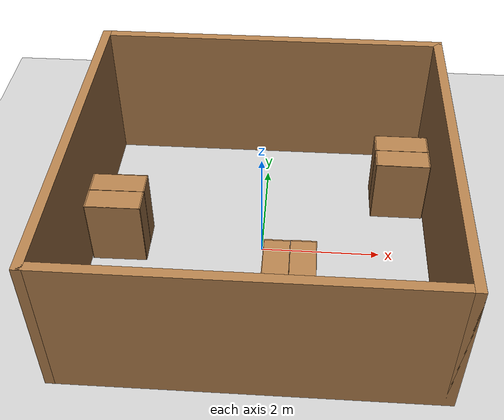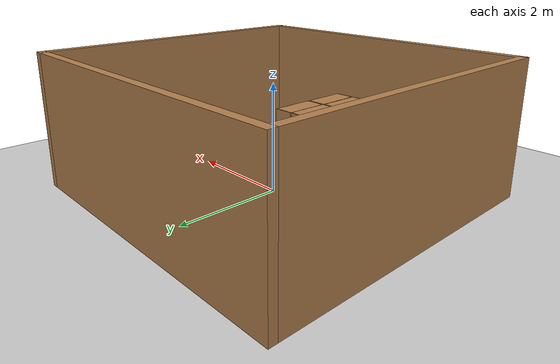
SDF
<sdf version="1.7">
 <world name="default">
  <light name="sun" type="directional">
   <pose>0 0 10 0 -0 0</pose>
   <diffuse>0.8 0.8 0.8 1</diffuse>
   <specular>0.2 0.2 0.2 1</specular>
   <attenuation>
    <range>1000</range>
    <constant>0.9</constant>
    <linear>0.01</linear>
    <quadratic>0.001</quadratic>
   </attenuation>
   <direction>-0.5 0.1 -0.9</direction>
   <spot><inner_angle>0</inner_angle><outer_angle>0</outer_angle><falloff>0</falloff></spot>
  </light>
  <model name="ground_plane">
   <static>1</static>
   <link name="link">
    <collision name="collision">
     <geometry><plane><normal>0 0 1</normal><size>100 100</size></plane></geometry>
     <surface>
      <contact><collide_bitmask>65535</collide_bitmask></contact>
      <friction><ode><mu>100</mu><mu2>50</mu2></ode></friction>
     </surface>
    </collision>
    <visual name="visual">
     <cast_shadows>0</cast_shadows>
     <geometry><plane><normal>0 0 1</normal><size>100 100</size></plane></geometry>
     <material>
      <script><uri>file://media/materials/scripts/gazebo.material</uri><name>Gazebo/Grey</name></script>
     </material>
    </visual>
   </link>
  </model>
  <gravity>0 0 -9.8</gravity>
  <magnetic_field>6e-06 2.3e-05 -4.2e-05</magnetic_field>
  <atmosphere type="adiabatic"/>
  <physics type="ode">
   <max_step_size>0.001</max_step_size>
   <real_time_factor>10</real_time_factor>
   <real_time_update_rate>10000</real_time_update_rate>
  </physics>
  <scene><ambient>0.4 0.4 0.4 1</ambient><background>0.7 0.7 0.7 1</background><shadows>1</shadows></scene>
  <audio><device>default</device></audio>
  <spherical_coordinates>
   <surface_model>EARTH_WGS84</surface_model>
   <latitude_deg>0</latitude_deg>
   <longitude_deg>0</longitude_deg>
   <elevation>0</elevation>
   <heading_deg>0</heading_deg>
  </spherical_coordinates>
  <model name="Untitled">
   <pose>-0.026247 -0.03989 0 0 -0 0</pose>
   <link name="Wall_0">
    <collision name="Wall_0_Collision">
     <geometry><box><size>6 0.15 2.5</size></box></geometry>
     <pose>0 0 1.25 0 -0 0</pose>
    </collision>
    <visual name="Wall_0_Visual">
     <pose>0 0 1.25 0 -0 0</pose>
     <geometry><box><size>6 0.15 2.5</size></box></geometry>
     <material>
      <script><uri>file://media/materials/scripts/gazebo.material</uri><name>Gazebo/Wood</name></script>
      <ambient>1 1 1 1</ambient>
     </material>
     <meta><layer>0</layer></meta>
    </visual>
    <pose>0 -2.8 0 0 -0 0</pose>
   </link>
   <link name="Wall_1">
    <collision name="Wall_1_Collision">
     <geometry><box><size>5.75 0.15 2.5</size></box></geometry>
     <pose>0 0 1.25 0 -0 0</pose>
    </collision>
    <visual name="Wall_1_Visual">
     <pose>0 0 1.25 0 -0 0</pose>
     <geometry><box><size>5.75 0.15 2.5</size></box></geometry>
     <material>
      <script><uri>file://media/materials/scripts/gazebo.material</uri><name>Gazebo/Wood</name></script>
      <ambient>1 1 1 1</ambient>
     </material>
     <meta><layer>0</layer></meta>
    </visual>
    <pose>2.925 -0 0 0 -0 1.5708</pose>
   </link>
   <link name="Wall_2">
    <collision name="Wall_2_Collision">
     <geometry><box><size>6 0.15 2.5</size></box></geometry>
     <pose>0 0 1.25 0 -0 0</pose>
    </collision>
    <visual name="Wall_2_Visual">
     <pose>0 0 1.25 0 -0 0</pose>
     <geometry><box><size>6 0.15 2.5</size></box></geometry>
     <material>
      <script><uri>file://media/materials/scripts/gazebo.material</uri><name>Gazebo/Wood</name></script>
      <ambient>1 1 1 1</ambient>
     </material>
     <meta><layer>0</layer></meta>
    </visual>
    <pose>0 2.8 0 0 -0 3.14159</pose>
   </link>
   <link name="Wall_3">
    <collision name="Wall_3_Collision">
     <geometry><box><size>5.75 0.15 2.5</size></box></geometry>
     <pose>0 0 1.25 0 -0 0</pose>
    </collision>
    <visual name="Wall_3_Visual">
     <pose>0 0 1.25 0 -0 0</pose>
     <geometry><box><size>5.75 0.15 2.5</size></box></geometry>
     <material>
      <script><uri>file://media/materials/scripts/gazebo.material</uri><name>Gazebo/Wood</name></script>
      <ambient>1 1 1 1</ambient>
     </material>
     <meta><layer>0</layer></meta>
    </visual>
    <pose>-2.925 -0 0 0 -0 -1.5708</pose>
   </link>
   <static>1</static>
  </model>
  <model name="bookshelf">
   <static>1</static>
   <link name="link">
    <inertial><mass>1</mass></inertial>
    <collision name="back">
     <pose>0 0.005 0.6 0 -0 0</pose>
     <geometry><box><size>0.9 0.01 1.2</size></box></geometry>
    </collision>
    <visual name="visual1">
     <pose>0 0.005 0.6 0 -0 0</pose>
     <geometry><box><size>0.9 0.01 1.2</size></box></geometry>
     <material>
      <script><uri>file://media/materials/scripts/gazebo.material</uri><name>Gazebo/Wood</name></script>
     </material>
    </visual>
    <collision name="left_side">
     <pose>0.45 -0.195 0.6 0 -0 0</pose>
     <geometry><box><size>0.02 0.4 1.2</size></box></geometry>
    </collision>
    <visual name="visual2">
     <pose>0.45 -0.195 0.6 0 -0 0</pose>
     <geometry><box><size>0.02 0.4 1.2</size></box></geometry>
     <material>
      <script><uri>file://media/materials/scripts/gazebo.material</uri><name>Gazebo/Wood</name></script>
     </material>
    </visual>
    <collision name="right_side">
     <pose>-0.45 -0.195 0.6 0 -0 0</pose>
     <geometry><box><size>0.02 0.4 1.2</size></box></geometry>
    </collision>
    <visual name="visual3">
     <pose>-0.45 -0.195 0.6 0 -0 0</pose>
     <geometry><box><size>0.02 0.4 1.2</size></box></geometry>
     <material>
      <script><uri>file://media/materials/scripts/gazebo.material</uri><name>Gazebo/Wood</name></script>
     </material>
    </visual>
    <collision name="bottom">
     <pose>0 -0.195 0.03 0 -0 0</pose>
     <geometry><box><size>0.88 0.4 0.06</size></box></geometry>
    </collision>
    <visual name="visual4">
     <pose>0 -0.195 0.03 0 -0 0</pose>
     <geometry><box><size>0.88 0.4 0.06</size></box></geometry>
     <material>
      <script><uri>file://media/materials/scripts/gazebo.material</uri><name>Gazebo/Wood</name></script>
     </material>
    </visual>
    <collision name="top">
     <pose>0 -0.195 1.19 0 -0 0</pose>
     <geometry><box><size>0.88 0.4 0.02</size></box></geometry>
    </collision>
    <visual name="visual5">
     <pose>0 -0.195 1.19 0 -0 0</pose>
     <geometry><box><size>0.88 0.4 0.02</size></box></geometry>
     <material>
      <script><uri>file://media/materials/scripts/gazebo.material</uri><name>Gazebo/Wood</name></script>
     </material>
    </visual>
    <collision name="low_shelf">
     <pose>0 -0.195 0.43 0 -0 0</pose>
     <geometry><box><size>0.88 0.4 0.02</size></box></geometry>
    </collision>
    <visual name="visual6">
     <pose>0 -0.195 0.43 0 -0 0</pose>
     <geometry><box><size>0.88 0.4 0.02</size></box></geometry>
     <material>
      <script><uri>file://media/materials/scripts/gazebo.material</uri><name>Gazebo/Wood</name></script>
     </material>
    </visual>
    <collision name="high_shelf">
     <pose>0 -0.195 0.8 0 -0 0</pose>
     <geometry><box><size>0.88 0.4 0.02</size></box></geometry>
    </collision>
    <visual name="visual7">
     <pose>0 -0.195 0.8 0 -0 0</pose>
     <geometry><box><size>0.88 0.4 0.02</size></box></geometry>
     <material>
      <script><uri>file://media/materials/scripts/gazebo.material</uri><name>Gazebo/Wood</name></script>
     </material>
    </visual>
   </link>
   <pose>-2.40378 0.433356 0 0 -0 0.007442</pose>
  </model>
  <model name="bookshelf_0">
   <static>1</static>
   <link name="link">
    <inertial><mass>1</mass></inertial>
    <collision name="back">
     <pose>0 0.005 0.6 0 -0 0</pose>
     <geometry><box><size>0.9 0.01 1.2</size></box></geometry>
    </collision>
    <visual name="visual1">
     <pose>0 0.005 0.6 0 -0 0</pose>
     <geometry><box><size>0.9 0.01 1.2</size></box></geometry>
     <material>
      <script><uri>file://media/materials/scripts/gazebo.material</uri><name>Gazebo/Wood</name></script>
     </material>
    </visual>
    <collision name="left_side">
     <pose>0.45 -0.195 0.6 0 -0 0</pose>
     <geometry><box><size>0.02 0.4 1.2</size></box></geometry>
    </collision>
    <visual name="visual2">
     <pose>0.45 -0.195 0.6 0 -0 0</pose>
     <geometry><box><size>0.02 0.4 1.2</size></box></geometry>
     <material>
      <script><uri>file://media/materials/scripts/gazebo.material</uri><name>Gazebo/Wood</name></script>
     </material>
    </visual>
    <collision name="right_side">
     <pose>-0.45 -0.195 0.6 0 -0 0</pose>
     <geometry><box><size>0.02 0.4 1.2</size></box></geometry>
    </collision>
    <visual name="visual3">
     <pose>-0.45 -0.195 0.6 0 -0 0</pose>
     <geometry><box><size>0.02 0.4 1.2</size></box></geometry>
     <material>
      <script><uri>file://media/materials/scripts/gazebo.material</uri><name>Gazebo/Wood</name></script>
     </material>
    </visual>
    <collision name="bottom">
     <pose>0 -0.195 0.03 0 -0 0</pose>
     <geometry><box><size>0.88 0.4 0.06</size></box></geometry>
    </collision>
    <visual name="visual4">
     <pose>0 -0.195 0.03 0 -0 0</pose>
     <geometry><box><size>0.88 0.4 0.06</size></box></geometry>
     <material>
      <script><uri>file://media/materials/scripts/gazebo.material</uri><name>Gazebo/Wood</name></script>
     </material>
    </visual>
    <collision name="top">
     <pose>0 -0.195 1.19 0 -0 0</pose>
     <geometry><box><size>0.88 0.4 0.02</size></box></geometry>
    </collision>
    <visual name="visual5">
     <pose>0 -0.195 1.19 0 -0 0</pose>
     <geometry><box><size>0.88 0.4 0.02</size></box></geometry>
     <material>
      <script><uri>file://media/materials/scripts/gazebo.material</uri><name>Gazebo/Wood</name></script>
     </material>
    </visual>
    <collision name="low_shelf">
     <pose>0 -0.195 0.43 0 -0 0</pose>
     <geometry><box><size>0.88 0.4 0.02</size></box></geometry>
    </collision>
    <visual name="visual6">
     <pose>0 -0.195 0.43 0 -0 0</pose>
     <geometry><box><size>0.88 0.4 0.02</size></box></geometry>
     <material>
      <script><uri>file://media/materials/scripts/gazebo.material</uri><name>Gazebo/Wood</name></script>
     </material>
    </visual>
    <collision name="high_shelf">
     <pose>0 -0.195 0.8 0 -0 0</pose>
     <geometry><box><size>0.88 0.4 0.02</size></box></geometry>
    </collision>
    <visual name="visual7">
     <pose>0 -0.195 0.8 0 -0 0</pose>
     <geometry><box><size>0.88 0.4 0.02</size></box></geometry>
     <material>
      <script><uri>file://media/materials/scripts/gazebo.material</uri><name>Gazebo/Wood</name></script>
     </material>
    </visual>
   </link>
   <pose>-2.39866 -0.364376 0 0 -0 -3.1312</pose>
  </model>
  <model name="bookshelf_1">
   <static>1</static>
   <link name="link">
    <inertial><mass>1</mass></inertial>
    <collision name="back">
     <pose>0 0.005 0.6 0 -0 0</pose>
     <geometry><box><size>0.9 0.01 1.2</size></box></geometry>
    </collision>
    <visual name="visual1">
     <pose>0 0.005 0.6 0 -0 0</pose>
     <geometry><box><size>0.9 0.01 1.2</size></box></geometry>
     <material>
      <script><uri>file://media/materials/scripts/gazebo.material</uri><name>Gazebo/Wood</name></script>
     </material>
    </visual>
    <collision name="left_side">
     <pose>0.45 -0.195 0.6 0 -0 0</pose>
     <geometry><box><size>0.02 0.4 1.2</size></box></geometry>
    </collision>
    <visual name="visual2">
     <pose>0.45 -0.195 0.6 0 -0 0</pose>
     <geometry><box><size>0.02 0.4 1.2</size></box></geometry>
     <material>
      <script><uri>file://media/materials/scripts/gazebo.material</uri><name>Gazebo/Wood</name></script>
     </material>
    </visual>
    <collision name="right_side">
     <pose>-0.45 -0.195 0.6 0 -0 0</pose>
     <geometry><box><size>0.02 0.4 1.2</size></box></geometry>
    </collision>
    <visual name="visual3">
     <pose>-0.45 -0.195 0.6 0 -0 0</pose>
     <geometry><box><size>0.02 0.4 1.2</size></box></geometry>
     <material>
      <script><uri>file://media/materials/scripts/gazebo.material</uri><name>Gazebo/Wood</name></script>
     </material>
    </visual>
    <collision name="bottom">
     <pose>0 -0.195 0.03 0 -0 0</pose>
     <geometry><box><size>0.88 0.4 0.06</size></box></geometry>
    </collision>
    <visual name="visual4">
     <pose>0 -0.195 0.03 0 -0 0</pose>
     <geometry><box><size>0.88 0.4 0.06</size></box></geometry>
     <material>
      <script><uri>file://media/materials/scripts/gazebo.material</uri><name>Gazebo/Wood</name></script>
     </material>
    </visual>
    <collision name="top">
     <pose>0 -0.195 1.19 0 -0 0</pose>
     <geometry><box><size>0.88 0.4 0.02</size></box></geometry>
    </collision>
    <visual name="visual5">
     <pose>0 -0.195 1.19 0 -0 0</pose>
     <geometry><box><size>0.88 0.4 0.02</size></box></geometry>
     <material>
      <script><uri>file://media/materials/scripts/gazebo.material</uri><name>Gazebo/Wood</name></script>
     </material>
    </visual>
    <collision name="low_shelf">
     <pose>0 -0.195 0.43 0 -0 0</pose>
     <geometry><box><size>0.88 0.4 0.02</size></box></geometry>
    </collision>
    <visual name="visual6">
     <pose>0 -0.195 0.43 0 -0 0</pose>
     <geometry><box><size>0.88 0.4 0.02</size></box></geometry>
     <material>
      <script><uri>file://media/materials/scripts/gazebo.material</uri><name>Gazebo/Wood</name></script>
     </material>
    </visual>
    <collision name="high_shelf">
     <pose>0 -0.195 0.8 0 -0 0</pose>
     <geometry><box><size>0.88 0.4 0.02</size></box></geometry>
    </collision>
    <visual name="visual7">
     <pose>0 -0.195 0.8 0 -0 0</pose>
     <geometry><box><size>0.88 0.4 0.02</size></box></geometry>
     <material>
      <script><uri>file://media/materials/scripts/gazebo.material</uri><name>Gazebo/Wood</name></script>
     </material>
    </visual>
   </link>
   <pose>2.34894 1.75735 0 0 -0 0</pose>
  </model>
  <model name="bookshelf_2">
   <static>1</static>
   <link name="link">
    <inertial><mass>1</mass></inertial>
    <collision name="back">
     <pose>0 0.005 0.6 0 -0 0</pose>
     <geometry><box><size>0.9 0.01 1.2</size></box></geometry>
    </collision>
    <visual name="visual1">
     <pose>0 0.005 0.6 0 -0 0</pose>
     <geometry><box><size>0.9 0.01 1.2</size></box></geometry>
     <material>
      <script><uri>file://media/materials/scripts/gazebo.material</uri><name>Gazebo/Wood</name></script>
     </material>
    </visual>
    <collision name="left_side">
     <pose>0.45 -0.195 0.6 0 -0 0</pose>
     <geometry><box><size>0.02 0.4 1.2</size></box></geometry>
    </collision>
    <visual name="visual2">
     <pose>0.45 -0.195 0.6 0 -0 0</pose>
     <geometry><box><size>0.02 0.4 1.2</size></box></geometry>
     <material>
      <script><uri>file://media/materials/scripts/gazebo.material</uri><name>Gazebo/Wood</name></script>
     </material>
    </visual>
    <collision name="right_side">
     <pose>-0.45 -0.195 0.6 0 -0 0</pose>
     <geometry><box><size>0.02 0.4 1.2</size></box></geometry>
    </collision>
    <visual name="visual3">
     <pose>-0.45 -0.195 0.6 0 -0 0</pose>
     <geometry><box><size>0.02 0.4 1.2</size></box></geometry>
     <material>
      <script><uri>file://media/materials/scripts/gazebo.material</uri><name>Gazebo/Wood</name></script>
     </material>
    </visual>
    <collision name="bottom">
     <pose>0 -0.195 0.03 0 -0 0</pose>
     <geometry><box><size>0.88 0.4 0.06</size></box></geometry>
    </collision>
    <visual name="visual4">
     <pose>0 -0.195 0.03 0 -0 0</pose>
     <geometry><box><size>0.88 0.4 0.06</size></box></geometry>
     <material>
      <script><uri>file://media/materials/scripts/gazebo.material</uri><name>Gazebo/Wood</name></script>
     </material>
    </visual>
    <collision name="top">
     <pose>0 -0.195 1.19 0 -0 0</pose>
     <geometry><box><size>0.88 0.4 0.02</size></box></geometry>
    </collision>
    <visual name="visual5">
     <pose>0 -0.195 1.19 0 -0 0</pose>
     <geometry><box><size>0.88 0.4 0.02</size></box></geometry>
     <material>
      <script><uri>file://media/materials/scripts/gazebo.material</uri><name>Gazebo/Wood</name></script>
     </material>
    </visual>
    <collision name="low_shelf">
     <pose>0 -0.195 0.43 0 -0 0</pose>
     <geometry><box><size>0.88 0.4 0.02</size></box></geometry>
    </collision>
    <visual name="visual6">
     <pose>0 -0.195 0.43 0 -0 0</pose>
     <geometry><box><size>0.88 0.4 0.02</size></box></geometry>
     <material>
      <script><uri>file://media/materials/scripts/gazebo.material</uri><name>Gazebo/Wood</name></script>
     </material>
    </visual>
    <collision name="high_shelf">
     <pose>0 -0.195 0.8 0 -0 0</pose>
     <geometry><box><size>0.88 0.4 0.02</size></box></geometry>
    </collision>
    <visual name="visual7">
     <pose>0 -0.195 0.8 0 -0 0</pose>
     <geometry><box><size>0.88 0.4 0.02</size></box></geometry>
     <material>
      <script><uri>file://media/materials/scripts/gazebo.material</uri><name>Gazebo/Wood</name></script>
     </material>
    </visual>
   </link>
   <pose>2.35008 0.962225 0 0 -0 3.13796</pose>
  </model>
  <model name="bookshelf_3">
   <static>1</static>
   <link name="link">
    <inertial><mass>1</mass></inertial>
    <collision name="back">
     <pose>0 0.005 0.6 0 -0 0</pose>
     <geometry><box><size>0.9 0.01 1.2</size></box></geometry>
    </collision>
    <visual name="visual1">
     <pose>0 0.005 0.6 0 -0 0</pose>
     <geometry><box><size>0.9 0.01 1.2</size></box></geometry>
     <material>
      <script><uri>file://media/materials/scripts/gazebo.material</uri><name>Gazebo/Wood</name></script>
     </material>
    </visual>
    <collision name="left_side">
     <pose>0.45 -0.195 0.6 0 -0 0</pose>
     <geometry><box><size>0.02 0.4 1.2</size></box></geometry>
    </collision>
    <visual name="visual2">
     <pose>0.45 -0.195 0.6 0 -0 0</pose>
     <geometry><box><size>0.02 0.4 1.2</size></box></geometry>
     <material>
      <script><uri>file://media/materials/scripts/gazebo.material</uri><name>Gazebo/Wood</name></script>
     </material>
    </visual>
    <collision name="right_side">
     <pose>-0.45 -0.195 0.6 0 -0 0</pose>
     <geometry><box><size>0.02 0.4 1.2</size></box></geometry>
    </collision>
    <visual name="visual3">
     <pose>-0.45 -0.195 0.6 0 -0 0</pose>
     <geometry><box><size>0.02 0.4 1.2</size></box></geometry>
     <material>
      <script><uri>file://media/materials/scripts/gazebo.material</uri><name>Gazebo/Wood</name></script>
     </material>
    </visual>
    <collision name="bottom">
     <pose>0 -0.195 0.03 0 -0 0</pose>
     <geometry><box><size>0.88 0.4 0.06</size></box></geometry>
    </collision>
    <visual name="visual4">
     <pose>0 -0.195 0.03 0 -0 0</pose>
     <geometry><box><size>0.88 0.4 0.06</size></box></geometry>
     <material>
      <script><uri>file://media/materials/scripts/gazebo.material</uri><name>Gazebo/Wood</name></script>
     </material>
    </visual>
    <collision name="top">
     <pose>0 -0.195 1.19 0 -0 0</pose>
     <geometry><box><size>0.88 0.4 0.02</size></box></geometry>
    </collision>
    <visual name="visual5">
     <pose>0 -0.195 1.19 0 -0 0</pose>
     <geometry><box><size>0.88 0.4 0.02</size></box></geometry>
     <material>
      <script><uri>file://media/materials/scripts/gazebo.material</uri><name>Gazebo/Wood</name></script>
     </material>
    </visual>
    <collision name="low_shelf">
     <pose>0 -0.195 0.43 0 -0 0</pose>
     <geometry><box><size>0.88 0.4 0.02</size></box></geometry>
    </collision>
    <visual name="visual6">
     <pose>0 -0.195 0.43 0 -0 0</pose>
     <geometry><box><size>0.88 0.4 0.02</size></box></geometry>
     <material>
      <script><uri>file://media/materials/scripts/gazebo.material</uri><name>Gazebo/Wood</name></script>
     </material>
    </visual>
    <collision name="high_shelf">
     <pose>0 -0.195 0.8 0 -0 0</pose>
     <geometry><box><size>0.88 0.4 0.02</size></box></geometry>
    </collision>
    <visual name="visual7">
     <pose>0 -0.195 0.8 0 -0 0</pose>
     <geometry><box><size>0.88 0.4 0.02</size></box></geometry>
     <material>
      <script><uri>file://media/materials/scripts/gazebo.material</uri><name>Gazebo/Wood</name></script>
     </material>
    </visual>
   </link>
   <pose>0.085286 -2.29523 0 0 -0 1.57097</pose>
  </model>
  <model name="bookshelf_4">
   <static>1</static>
   <link name="link">
    <inertial><mass>1</mass></inertial>
    <collision name="back">
     <pose>0 0.005 0.6 0 -0 0</pose>
     <geometry><box><size>0.9 0.01 1.2</size></box></geometry>
    </collision>
    <visual name="visual1">
     <pose>0 0.005 0.6 0 -0 0</pose>
     <geometry><box><size>0.9 0.01 1.2</size></box></geometry>
     <material>
      <script><uri>file://media/materials/scripts/gazebo.material</uri><name>Gazebo/Wood</name></script>
     </material>
    </visual>
    <collision name="left_side">
     <pose>0.45 -0.195 0.6 0 -0 0</pose>
     <geometry><box><size>0.02 0.4 1.2</size></box></geometry>
    </collision>
    <visual name="visual2">
     <pose>0.45 -0.195 0.6 0 -0 0</pose>
     <geometry><box><size>0.02 0.4 1.2</size></box></geometry>
     <material>
      <script><uri>file://media/materials/scripts/gazebo.material</uri><name>Gazebo/Wood</name></script>
     </material>
    </visual>
    <collision name="right_side">
     <pose>-0.45 -0.195 0.6 0 -0 0</pose>
     <geometry><box><size>0.02 0.4 1.2</size></box></geometry>
    </collision>
    <visual name="visual3">
     <pose>-0.45 -0.195 0.6 0 -0 0</pose>
     <geometry><box><size>0.02 0.4 1.2</size></box></geometry>
     <material>
      <script><uri>file://media/materials/scripts/gazebo.material</uri><name>Gazebo/Wood</name></script>
     </material>
    </visual>
    <collision name="bottom">
     <pose>0 -0.195 0.03 0 -0 0</pose>
     <geometry><box><size>0.88 0.4 0.06</size></box></geometry>
    </collision>
    <visual name="visual4">
     <pose>0 -0.195 0.03 0 -0 0</pose>
     <geometry><box><size>0.88 0.4 0.06</size></box></geometry>
     <material>
      <script><uri>file://media/materials/scripts/gazebo.material</uri><name>Gazebo/Wood</name></script>
     </material>
    </visual>
    <collision name="top">
     <pose>0 -0.195 1.19 0 -0 0</pose>
     <geometry><box><size>0.88 0.4 0.02</size></box></geometry>
    </collision>
    <visual name="visual5">
     <pose>0 -0.195 1.19 0 -0 0</pose>
     <geometry><box><size>0.88 0.4 0.02</size></box></geometry>
     <material>
      <script><uri>file://media/materials/scripts/gazebo.material</uri><name>Gazebo/Wood</name></script>
     </material>
    </visual>
    <collision name="low_shelf">
     <pose>0 -0.195 0.43 0 -0 0</pose>
     <geometry><box><size>0.88 0.4 0.02</size></box></geometry>
    </collision>
    <visual name="visual6">
     <pose>0 -0.195 0.43 0 -0 0</pose>
     <geometry><box><size>0.88 0.4 0.02</size></box></geometry>
     <material>
      <script><uri>file://media/materials/scripts/gazebo.material</uri><name>Gazebo/Wood</name></script>
     </material>
    </visual>
    <collision name="high_shelf">
     <pose>0 -0.195 0.8 0 -0 0</pose>
     <geometry><box><size>0.88 0.4 0.02</size></box></geometry>
    </collision>
    <visual name="visual7">
     <pose>0 -0.195 0.8 0 -0 0</pose>
     <geometry><box><size>0.88 0.4 0.02</size></box></geometry>
     <material>
      <script><uri>file://media/materials/scripts/gazebo.material</uri><name>Gazebo/Wood</name></script>
     </material>
    </visual>
   </link>
   <pose>0.096449 -1.3663 0 0 -0 1.56642</pose>
  </model>
  <model name="bookshelf_5">
   <static>1</static>
   <link name="link">
    <inertial><mass>1</mass></inertial>
    <collision name="back">
     <pose>0 0.005 0.6 0 -0 0</pose>
     <geometry><box><size>0.9 0.01 1.2</size></box></geometry>
    </collision>
    <visual name="visual1">
     <pose>0 0.005 0.6 0 -0 0</pose>
     <geometry><box><size>0.9 0.01 1.2</size></box></geometry>
     <material>
      <script><uri>file://media/materials/scripts/gazebo.material</uri><name>Gazebo/Wood</name></script>
     </material>
    </visual>
    <collision name="left_side">
     <pose>0.45 -0.195 0.6 0 -0 0</pose>
     <geometry><box><size>0.02 0.4 1.2</size></box></geometry>
    </collision>
    <visual name="visual2">
     <pose>0.45 -0.195 0.6 0 -0 0</pose>
     <geometry><box><size>0.02 0.4 1.2</size></box></geometry>
     <material>
      <script><uri>file://media/materials/scripts/gazebo.material</uri><name>Gazebo/Wood</name></script>
     </material>
    </visual>
    <collision name="right_side">
     <pose>-0.45 -0.195 0.6 0 -0 0</pose>
     <geometry><box><size>0.02 0.4 1.2</size></box></geometry>
    </collision>
    <visual name="visual3">
     <pose>-0.45 -0.195 0.6 0 -0 0</pose>
     <geometry><box><size>0.02 0.4 1.2</size></box></geometry>
     <material>
      <script><uri>file://media/materials/scripts/gazebo.material</uri><name>Gazebo/Wood</name></script>
     </material>
    </visual>
    <collision name="bottom">
     <pose>0 -0.195 0.03 0 -0 0</pose>
     <geometry><box><size>0.88 0.4 0.06</size></box></geometry>
    </collision>
    <visual name="visual4">
     <pose>0 -0.195 0.03 0 -0 0</pose>
     <geometry><box><size>0.88 0.4 0.06</size></box></geometry>
     <material>
      <script><uri>file://media/materials/scripts/gazebo.material</uri><name>Gazebo/Wood</name></script>
     </material>
    </visual>
    <collision name="top">
     <pose>0 -0.195 1.19 0 -0 0</pose>
     <geometry><box><size>0.88 0.4 0.02</size></box></geometry>
    </collision>
    <visual name="visual5">
     <pose>0 -0.195 1.19 0 -0 0</pose>
     <geometry><box><size>0.88 0.4 0.02</size></box></geometry>
     <material>
      <script><uri>file://media/materials/scripts/gazebo.material</uri><name>Gazebo/Wood</name></script>
     </material>
    </visual>
    <collision name="low_shelf">
     <pose>0 -0.195 0.43 0 -0 0</pose>
     <geometry><box><size>0.88 0.4 0.02</size></box></geometry>
    </collision>
    <visual name="visual6">
     <pose>0 -0.195 0.43 0 -0 0</pose>
     <geometry><box><size>0.88 0.4 0.02</size></box></geometry>
     <material>
      <script><uri>file://media/materials/scripts/gazebo.material</uri><name>Gazebo/Wood</name></script>
     </material>
    </visual>
    <collision name="high_shelf">
     <pose>0 -0.195 0.8 0 -0 0</pose>
     <geometry><box><size>0.88 0.4 0.02</size></box></geometry>
    </collision>
    <visual name="visual7">
     <pose>0 -0.195 0.8 0 -0 0</pose>
     <geometry><box><size>0.88 0.4 0.02</size></box></geometry>
     <material>
      <script><uri>file://media/materials/scripts/gazebo.material</uri><name>Gazebo/Wood</name></script>
     </material>
    </visual>
   </link>
   <pose>0.893299 -2.28481 0 0 0 -1.56854</pose>
  </model>
  <model name="bookshelf_6">
   <static>1</static>
   <link name="link">
    <inertial><mass>1</mass></inertial>
    <collision name="back">
     <pose>0 0.005 0.6 0 -0 0</pose>
     <geometry><box><size>0.9 0.01 1.2</size></box></geometry>
    </collision>
    <visual name="visual1">
     <pose>0 0.005 0.6 0 -0 0</pose>
     <geometry><box><size>0.9 0.01 1.2</size></box></geometry>
     <material>
      <script><uri>file://media/materials/scripts/gazebo.material</uri><name>Gazebo/Wood</name></script>
     </material>
    </visual>
    <collision name="left_side">
     <pose>0.45 -0.195 0.6 0 -0 0</pose>
     <geometry><box><size>0.02 0.4 1.2</size></box></geometry>
    </collision>
    <visual name="visual2">
     <pose>0.45 -0.195 0.6 0 -0 0</pose>
     <geometry><box><size>0.02 0.4 1.2</size></box></geometry>
     <material>
      <script><uri>file://media/materials/scripts/gazebo.material</uri><name>Gazebo/Wood</name></script>
     </material>
    </visual>
    <collision name="right_side">
     <pose>-0.45 -0.195 0.6 0 -0 0</pose>
     <geometry><box><size>0.02 0.4 1.2</size></box></geometry>
    </collision>
    <visual name="visual3">
     <pose>-0.45 -0.195 0.6 0 -0 0</pose>
     <geometry><box><size>0.02 0.4 1.2</size></box></geometry>
     <material>
      <script><uri>file://media/materials/scripts/gazebo.material</uri><name>Gazebo/Wood</name></script>
     </material>
    </visual>
    <collision name="bottom">
     <pose>0 -0.195 0.03 0 -0 0</pose>
     <geometry><box><size>0.88 0.4 0.06</size></box></geometry>
    </collision>
    <visual name="visual4">
     <pose>0 -0.195 0.03 0 -0 0</pose>
     <geometry><box><size>0.88 0.4 0.06</size></box></geometry>
     <material>
      <script><uri>file://media/materials/scripts/gazebo.material</uri><name>Gazebo/Wood</name></script>
     </material>
    </visual>
    <collision name="top">
     <pose>0 -0.195 1.19 0 -0 0</pose>
     <geometry><box><size>0.88 0.4 0.02</size></box></geometry>
    </collision>
    <visual name="visual5">
     <pose>0 -0.195 1.19 0 -0 0</pose>
     <geometry><box><size>0.88 0.4 0.02</size></box></geometry>
     <material>
      <script><uri>file://media/materials/scripts/gazebo.material</uri><name>Gazebo/Wood</name></script>
     </material>
    </visual>
    <collision name="low_shelf">
     <pose>0 -0.195 0.43 0 -0 0</pose>
     <geometry><box><size>0.88 0.4 0.02</size></box></geometry>
    </collision>
    <visual name="visual6">
     <pose>0 -0.195 0.43 0 -0 0</pose>
     <geometry><box><size>0.88 0.4 0.02</size></box></geometry>
     <material>
      <script><uri>file://media/materials/scripts/gazebo.material</uri><name>Gazebo/Wood</name></script>
     </material>
    </visual>
    <collision name="high_shelf">
     <pose>0 -0.195 0.8 0 -0 0</pose>
     <geometry><box><size>0.88 0.4 0.02</size></box></geometry>
    </collision>
    <visual name="visual7">
     <pose>0 -0.195 0.8 0 -0 0</pose>
     <geometry><box><size>0.88 0.4 0.02</size></box></geometry>
     <material>
      <script><uri>file://media/materials/scripts/gazebo.material</uri><name>Gazebo/Wood</name></script>
     </material>
    </visual>
   </link>
   <pose>0.895341 -1.3597 0 0 0 -1.57343</pose>
  </model>
 </world>
</sdf>
